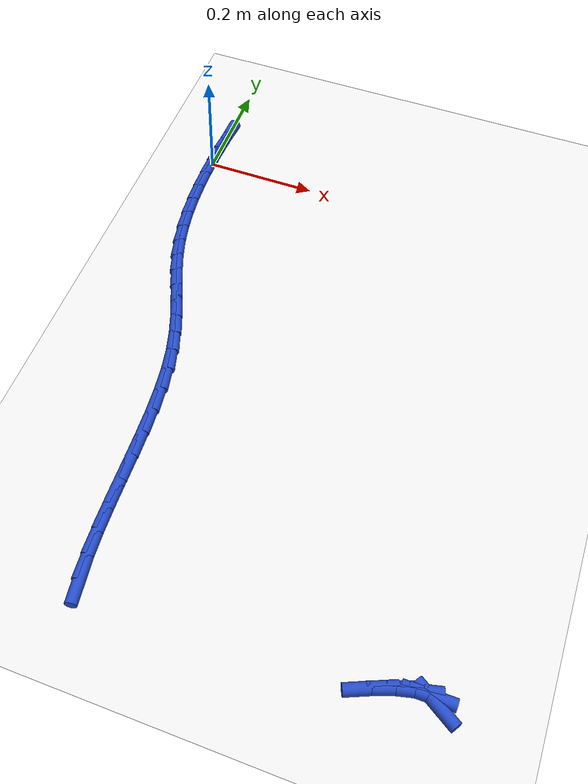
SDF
<sdf version="1.6">
 <world name="default">
  <model name="ground_plane">
   <static>1</static>
   <link name="link">
    <collision name="collision">
     <geometry><plane><normal>0 0 1</normal><size>100 100</size></plane></geometry>
     <surface><friction><ode><mu>100</mu><mu2>50</mu2></ode></friction></surface>
    </collision>
    <visual name="visual">
     <cast_shadows>0</cast_shadows>
     <geometry><plane><normal>0 0 1</normal><size>100 100</size></plane></geometry>
     <material>
      <script><uri>file://media/materials/scripts/gazebo.material</uri><name>Gazebo/WhiteGlow</name></script>
     </material>
    </visual>
   </link>
  </model>
  <model name="line">
   <link name="link_0">
    <pose>1.3444106938820255e-17 -1.0408340855860843e-16 0.01 0 1.57 1.5540973294162868</pose>
    <collision name="collision">
     <geometry><cylinder><radius>0.01</radius><length>0.08</length></cylinder></geometry>
    </collision>
    <visual name="visual">
     <material>
      <script><name>Gazebo/Blue</name><uri>file://media/materials/scripts/gazebo.material</uri></script>
     </material>
     <geometry><cylinder><radius>0.01</radius><length>0.08</length></cylinder></geometry>
    </visual>
   </link>
   <link name="link_1">
    <pose>0.0005962556742878384 0.03570275726623297 0.01 0 1.57 1.5266809034565847</pose>
    <collision name="collision">
     <geometry><cylinder><radius>0.01</radius><length>0.08</length></cylinder></geometry>
    </collision>
    <visual name="visual">
     <material>
      <script><name>Gazebo/Blue</name><uri>file://media/materials/scripts/gazebo.material</uri></script>
     </material>
     <geometry><cylinder><radius>0.01</radius><length>0.08</length></cylinder></geometry>
    </visual>
   </link>
   <link name="link_2">
    <pose>0.0021618774195277524 0.071168946625515 0.01 0 1.57 1.4938641283382073</pose>
    <collision name="collision">
     <geometry><cylinder><radius>0.01</radius><length>0.08</length></cylinder></geometry>
    </collision>
    <visual name="visual">
     <material>
      <script><name>Gazebo/Blue</name><uri>file://media/materials/scripts/gazebo.material</uri></script>
     </material>
     <geometry><cylinder><radius>0.01</radius><length>0.08</length></cylinder></geometry>
    </visual>
   </link>
   <link name="link_228">
    <pose>0.6763007172181089 -0.853683361374081 0.01 0 1.57 -0.560963154131082</pose>
    <collision name="collision">
     <geometry><cylinder><radius>0.01</radius><length>0.08</length></cylinder></geometry>
    </collision>
    <visual name="visual">
     <material>
      <script><name>Gazebo/Blue</name><uri>file://media/materials/scripts/gazebo.material</uri></script>
     </material>
     <geometry><cylinder><radius>0.01</radius><length>0.08</length></cylinder></geometry>
    </visual>
   </link>
   <link name="link_229">
    <pose>0.6640180114996741 -0.8459662346113204 0.01 0 1.57 0.008213575830607112</pose>
    <collision name="collision">
     <geometry><cylinder><radius>0.01</radius><length>0.08</length></cylinder></geometry>
    </collision>
    <visual name="visual">
     <material>
      <script><name>Gazebo/Blue</name><uri>file://media/materials/scripts/gazebo.material</uri></script>
     </material>
     <geometry><cylinder><radius>0.01</radius><length>0.08</length></cylinder></geometry>
    </visual>
   </link>
   <link name="link_230">
    <pose>0.6441068299936765 -0.8461297802882647 0.01 0 1.57 0.24941667501777906</pose>
    <collision name="collision">
     <geometry><cylinder><radius>0.01</radius><length>0.08</length></cylinder></geometry>
    </collision>
    <visual name="visual">
     <material>
      <script><name>Gazebo/Blue</name><uri>file://media/materials/scripts/gazebo.material</uri></script>
     </material>
     <geometry><cylinder><radius>0.01</radius><length>0.08</length></cylinder></geometry>
    </visual>
   </link>
   <link name="link_231">
    <pose>0.6176661494580639 -0.8528647677849042 0.01 0 1.57 0.36002163065872567</pose>
    <collision name="collision">
     <geometry><cylinder><radius>0.01</radius><length>0.08</length></cylinder></geometry>
    </collision>
    <visual name="visual">
     <material>
      <script><name>Gazebo/Blue</name><uri>file://media/materials/scripts/gazebo.material</uri></script>
     </material>
     <geometry><cylinder><radius>0.01</radius><length>0.08</length></cylinder></geometry>
    </visual>
   </link>
   <link name="link_232">
    <pose>0.5857949466507854 -0.8648619664812282 0.01 0 1.57 0.41499205764286856</pose>
    <collision name="collision">
     <geometry><cylinder><radius>0.01</radius><length>0.08</length></cylinder></geometry>
    </collision>
    <visual name="visual">
     <material>
      <script><name>Gazebo/Blue</name><uri>file://media/materials/scripts/gazebo.material</uri></script>
     </material>
     <geometry><cylinder><radius>0.01</radius><length>0.08</length></cylinder></geometry>
    </visual>
   </link>
   <link name="link_247">
    <pose>0.1399022788593683 -0.8640898393106108 0.01 0 1.57 -1.4317001109261307</pose>
    <collision name="collision">
     <geometry><cylinder><radius>0.01</radius><length>0.08</length></cylinder></geometry>
    </collision>
    <visual name="visual">
     <material>
      <script><name>Gazebo/Blue</name><uri>file://media/materials/scripts/gazebo.material</uri></script>
     </material>
     <geometry><cylinder><radius>0.01</radius><length>0.08</length></cylinder></geometry>
    </visual>
   </link>
   <link name="link_248">
    <pose>0.13463644409093006 -0.8264768089846061 0.01 0 1.57 -1.4834394899516212</pose>
    <collision name="collision">
     <geometry><cylinder><radius>0.01</radius><length>0.08</length></cylinder></geometry>
    </collision>
    <visual name="visual">
     <material>
      <script><name>Gazebo/Blue</name><uri>file://media/materials/scripts/gazebo.material</uri></script>
     </material>
     <geometry><cylinder><radius>0.01</radius><length>0.08</length></cylinder></geometry>
    </visual>
   </link>
   <link name="link_249">
    <pose>0.13109590072870314 -0.7860502930248787 0.01 0 1.57 -1.5163973101537027</pose>
    <collision name="collision">
     <geometry><cylinder><radius>0.01</radius><length>0.08</length></cylinder></geometry>
    </collision>
    <visual name="visual">
     <material>
      <script><name>Gazebo/Blue</name><uri>file://media/materials/scripts/gazebo.material</uri></script>
     </material>
     <geometry><cylinder><radius>0.01</radius><length>0.08</length></cylinder></geometry>
    </visual>
   </link>
   <link name="link_250">
    <pose>0.12877740914637673 -0.7434722415644435 0.01 0 1.57 -1.5345117095478655</pose>
    <collision name="collision">
     <geometry><cylinder><radius>0.01</radius><length>0.08</length></cylinder></geometry>
    </collision>
    <visual name="visual">
     <material>
      <script><name>Gazebo/Blue</name><uri>file://media/materials/scripts/gazebo.material</uri></script>
     </material>
     <geometry><cylinder><radius>0.01</radius><length>0.08</length></cylinder></geometry>
    </visual>
   </link>
   <link name="link_251">
    <pose>0.12717772971763977 -0.69940460473631 0.01 0 1.57 -1.5399764081087421</pose>
    <collision name="collision">
     <geometry><cylinder><radius>0.01</radius><length>0.08</length></cylinder></geometry>
    </collision>
    <visual name="visual">
     <material>
      <script><name>Gazebo/Blue</name><uri>file://media/materials/scripts/gazebo.material</uri></script>
     </material>
     <geometry><cylinder><radius>0.01</radius><length>0.08</length></cylinder></geometry>
    </visual>
   </link>
   <link name="link_252">
    <pose>0.12579362281618153 -0.6545093326734935 0.01 0 1.57 -1.5337130575629647</pose>
    <collision name="collision">
     <geometry><cylinder><radius>0.01</radius><length>0.08</length></cylinder></geometry>
    </collision>
    <visual name="visual">
     <material>
      <script><name>Gazebo/Blue</name><uri>file://media/materials/scripts/gazebo.material</uri></script>
     </material>
     <geometry><cylinder><radius>0.01</radius><length>0.08</length></cylinder></geometry>
    </visual>
   </link>
   <link name="link_253">
    <pose>0.12412184881569091 -0.6094483755090033 0.01 0 1.57 -1.5155916707742911</pose>
    <collision name="collision">
     <geometry><cylinder><radius>0.01</radius><length>0.08</length></cylinder></geometry>
    </collision>
    <visual name="visual">
     <material>
      <script><name>Gazebo/Blue</name><uri>file://media/materials/scripts/gazebo.material</uri></script>
     </material>
     <geometry><cylinder><radius>0.01</radius><length>0.08</length></cylinder></geometry>
    </visual>
   </link>
   <link name="link_254">
    <pose>0.12165916808985708 -0.5648836833758544 0.01 0 1.57 -1.4844615533011443</pose>
    <collision name="collision">
     <geometry><cylinder><radius>0.01</radius><length>0.08</length></cylinder></geometry>
    </collision>
    <visual name="visual">
     <material>
      <script><name>Gazebo/Blue</name><uri>file://media/materials/scripts/gazebo.material</uri></script>
     </material>
     <geometry><cylinder><radius>0.01</radius><length>0.08</length></cylinder></geometry>
    </visual>
   </link>
   <link name="link_255">
    <pose>0.11790234101236897 -0.5214772064070564 0.01 0 1.57 -1.4380233867174559</pose>
    <collision name="collision">
     <geometry><cylinder><radius>0.01</radius><length>0.08</length></cylinder></geometry>
    </collision>
    <visual name="visual">
     <material>
      <script><name>Gazebo/Blue</name><uri>file://media/materials/scripts/gazebo.material</uri></script>
     </material>
     <geometry><cylinder><radius>0.01</radius><length>0.08</length></cylinder></geometry>
    </visual>
   </link>
   <link name="link_256">
    <pose>0.11234812795691591 -0.4798908947356243 0.01 0 1.57 -1.3726233508116794</pose>
    <collision name="collision">
     <geometry><cylinder><radius>0.01</radius><length>0.08</length></cylinder></geometry>
    </collision>
    <visual name="visual">
     <material>
      <script><name>Gazebo/Blue</name><uri>file://media/materials/scripts/gazebo.material</uri></script>
     </material>
     <geometry><cylinder><radius>0.01</radius><length>0.08</length></cylinder></geometry>
    </visual>
   </link>
   <link name="link_257">
    <pose>0.10449525772911374 -0.4407846576745019 0.01 0 1.57 -1.2949226185302605</pose>
    <collision name="collision">
     <geometry><cylinder><radius>0.01</radius><length>0.08</length></cylinder></geometry>
    </collision>
    <visual name="visual">
     <material>
      <script><name>Gazebo/Blue</name><uri>file://media/materials/scripts/gazebo.material</uri></script>
     </material>
     <geometry><cylinder><radius>0.01</radius><length>0.08</length></cylinder></geometry>
    </visual>
   </link>
   <link name="link_258">
    <pose>0.09420661460964343 -0.40444085741862396 0.01 0 1.57 -1.230647516786273</pose>
    <collision name="collision">
     <geometry><cylinder><radius>0.01</radius><length>0.08</length></cylinder></geometry>
    </collision>
    <visual name="visual">
     <material>
      <script><name>Gazebo/Blue</name><uri>file://media/materials/scripts/gazebo.material</uri></script>
     </material>
     <geometry><cylinder><radius>0.01</radius><length>0.08</length></cylinder></geometry>
    </visual>
   </link>
   <link name="link_259">
    <pose>0.08213289213244189 -0.3703250756022223 0.01 0 1.57 -1.187809255758074</pose>
    <collision name="collision">
     <geometry><cylinder><radius>0.01</radius><length>0.08</length></cylinder></geometry>
    </collision>
    <visual name="visual">
     <material>
      <script><name>Gazebo/Blue</name><uri>file://media/materials/scripts/gazebo.material</uri></script>
     </material>
     <geometry><cylinder><radius>0.01</radius><length>0.08</length></cylinder></geometry>
    </visual>
   </link>
   <link name="link_260">
    <pose>0.0690276581363805 -0.3377962364013636 0.01 0 1.57 -1.1699877858466616</pose>
    <collision name="collision">
     <geometry><cylinder><radius>0.01</radius><length>0.08</length></cylinder></geometry>
    </collision>
    <visual name="visual">
     <material>
      <script><name>Gazebo/Blue</name><uri>file://media/materials/scripts/gazebo.material</uri></script>
     </material>
     <geometry><cylinder><radius>0.01</radius><length>0.08</length></cylinder></geometry>
    </visual>
   </link>
   <link name="link_261">
    <pose>0.05564448046033212 -0.30621326399211907 0.01 0 1.57 -1.179415848668119</pose>
    <collision name="collision">
     <geometry><cylinder><radius>0.01</radius><length>0.08</length></cylinder></geometry>
    </collision>
    <visual name="visual">
     <material>
      <script><name>Gazebo/Blue</name><uri>file://media/materials/scripts/gazebo.material</uri></script>
     </material>
     <geometry><cylinder><radius>0.01</radius><length>0.08</length></cylinder></geometry>
    </visual>
   </link>
   <link name="link_262">
    <pose>0.042736926943168115 -0.27493508255055565 0.01 0 1.57 -1.2169448831378575</pose>
    <collision name="collision">
     <geometry><cylinder><radius>0.01</radius><length>0.08</length></cylinder></geometry>
    </collision>
    <visual name="visual">
     <material>
      <script><name>Gazebo/Blue</name><uri>file://media/materials/scripts/gazebo.material</uri></script>
     </material>
     <geometry><cylinder><radius>0.01</radius><length>0.08</length></cylinder></geometry>
    </visual>
   </link>
   <link name="link_263">
    <pose>0.031058565423761352 -0.24332061625274432 0.01 0 1.57 -1.2803595745789673</pose>
    <collision name="collision">
     <geometry><cylinder><radius>0.01</radius><length>0.08</length></cylinder></geometry>
    </collision>
    <visual name="visual">
     <material>
      <script><name>Gazebo/Blue</name><uri>file://media/materials/scripts/gazebo.material</uri></script>
     </material>
     <geometry><cylinder><radius>0.01</radius><length>0.08</length></cylinder></geometry>
    </visual>
   </link>
   <link name="link_264">
    <pose>0.021326739586995897 -0.2107605611070481 0.01 0 1.57 -1.348715212916249</pose>
    <collision name="collision">
     <geometry><cylinder><radius>0.01</radius><length>0.08</length></cylinder></geometry>
    </collision>
    <visual name="visual">
     <material>
      <script><name>Gazebo/Blue</name><uri>file://media/materials/scripts/gazebo.material</uri></script>
     </material>
     <geometry><cylinder><radius>0.01</radius><length>0.08</length></cylinder></geometry>
    </visual>
   </link>
   <link name="link_265">
    <pose>0.013728431546266202 -0.17711078779262415 0.01 0 1.57 -1.4077592763926456</pose>
    <collision name="collision">
     <geometry><cylinder><radius>0.01</radius><length>0.08</length></cylinder></geometry>
    </collision>
    <visual name="visual">
     <material>
      <script><name>Gazebo/Blue</name><uri>file://media/materials/scripts/gazebo.material</uri></script>
     </material>
     <geometry><cylinder><radius>0.01</radius><length>0.08</length></cylinder></geometry>
    </visual>
   </link>
   <link name="link_266">
    <pose>0.008048232082031107 -0.14258010028147394 0.01 0 1.57 -1.4579764425067285</pose>
    <collision name="collision">
     <geometry><cylinder><radius>0.01</radius><length>0.08</length></cylinder></geometry>
    </collision>
    <visual name="visual">
     <material>
      <script><name>Gazebo/Blue</name><uri>file://media/materials/scripts/gazebo.material</uri></script>
     </material>
     <geometry><cylinder><radius>0.01</radius><length>0.08</length></cylinder></geometry>
    </visual>
   </link>
   <link name="link_267">
    <pose>0.004060715194789 -0.1073860881601183 0.01 0 1.57 -1.5001989702443983</pose>
    <collision name="collision">
     <geometry><cylinder><radius>0.01</radius><length>0.08</length></cylinder></geometry>
    </collision>
    <visual name="visual">
     <material>
      <script><name>Gazebo/Blue</name><uri>file://media/materials/scripts/gazebo.material</uri></script>
     </material>
     <geometry><cylinder><radius>0.01</radius><length>0.08</length></cylinder></geometry>
    </visual>
   </link>
   <link name="link_268">
    <pose>0.001540454885037742 -0.07174634101507507 0.01 0 1.57 -1.5351686754951213</pose>
    <collision name="collision">
     <geometry><cylinder><radius>0.01</radius><length>0.08</length></cylinder></geometry>
    </collision>
    <visual name="visual">
     <material>
      <script><name>Gazebo/Blue</name><uri>file://media/materials/scripts/gazebo.material</uri></script>
     </material>
     <geometry><cylinder><radius>0.01</radius><length>0.08</length></cylinder></geometry>
    </visual>
   </link>
   <link name="link_269">
    <pose>0.000262025153275368 -0.03587844843286196 0.01 0 1.57 -1.5634933216084823</pose>
    <collision name="collision">
     <geometry><cylinder><radius>0.01</radius><length>0.08</length></cylinder></geometry>
    </collision>
    <visual name="visual">
     <material>
      <script><name>Gazebo/Blue</name><uri>file://media/materials/scripts/gazebo.material</uri></script>
     </material>
     <geometry><cylinder><radius>0.01</radius><length>0.08</length></cylinder></geometry>
    </visual>
   </link>
   <link name="link_270">
    <pose>4.336808689942018e-18 4.163336342344337e-17 0.01 0 1.57 1.5559689176270683</pose>
    <collision name="collision">
     <geometry><cylinder><radius>0.01</radius><length>0.08</length></cylinder></geometry>
    </collision>
    <visual name="visual">
     <material>
      <script><name>Gazebo/Blue</name><uri>file://media/materials/scripts/gazebo.material</uri></script>
     </material>
     <geometry><cylinder><radius>0.01</radius><length>0.08</length></cylinder></geometry>
    </visual>
   </link>
   <link name="link_271">
    <pose>0.0005289534257096767 0.035671414696994246 0.01 0 1.57 1.5397536597210535</pose>
    <collision name="collision">
     <geometry><cylinder><radius>0.01</radius><length>0.08</length></cylinder></geometry>
    </collision>
    <visual name="visual">
     <material>
      <script><name>Gazebo/Blue</name><uri>file://media/materials/scripts/gazebo.material</uri></script>
     </material>
     <geometry><cylinder><radius>0.01</radius><length>0.08</length></cylinder></geometry>
    </visual>
   </link>
   <link name="link_272">
    <pose>0.001623459430902445 0.07091820607160075 0.01 0 1.57 1.5479083263487023</pose>
    <collision name="collision">
     <geometry><cylinder><radius>0.01</radius><length>0.08</length></cylinder></geometry>
    </collision>
    <visual name="visual">
     <material>
      <script><name>Gazebo/Blue</name><uri>file://media/materials/scripts/gazebo.material</uri></script>
     </material>
     <geometry><cylinder><radius>0.01</radius><length>0.08</length></cylinder></geometry>
    </visual>
   </link>
  </model>
 </world>
</sdf>
